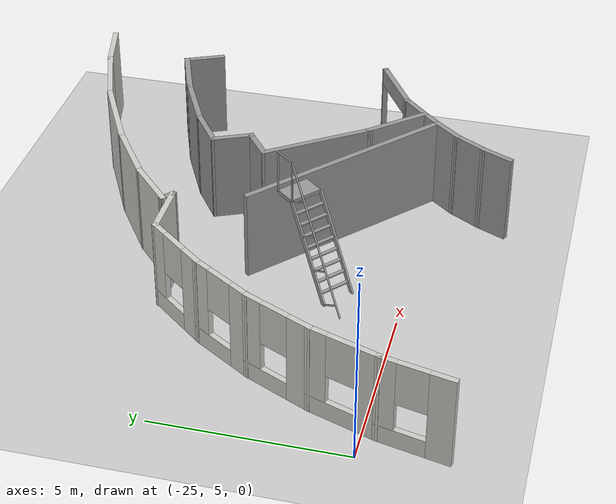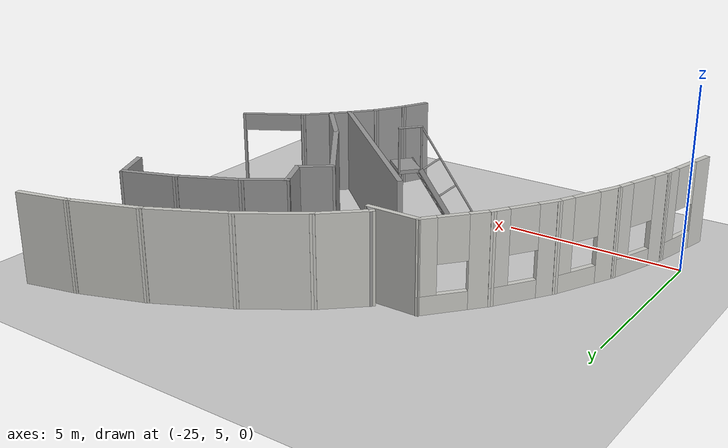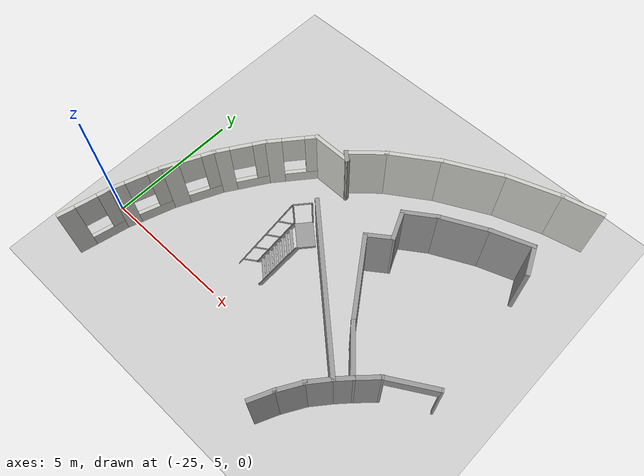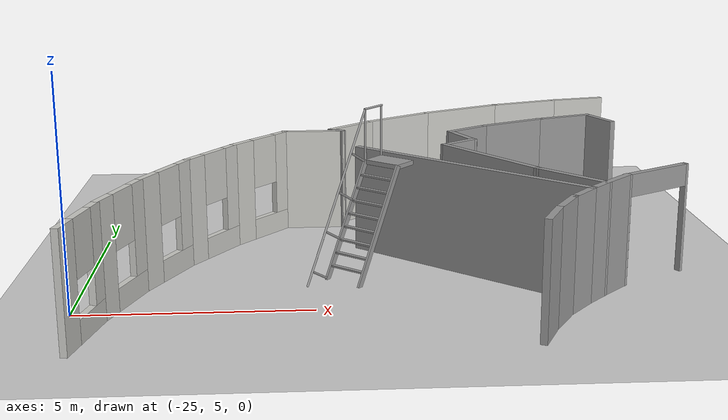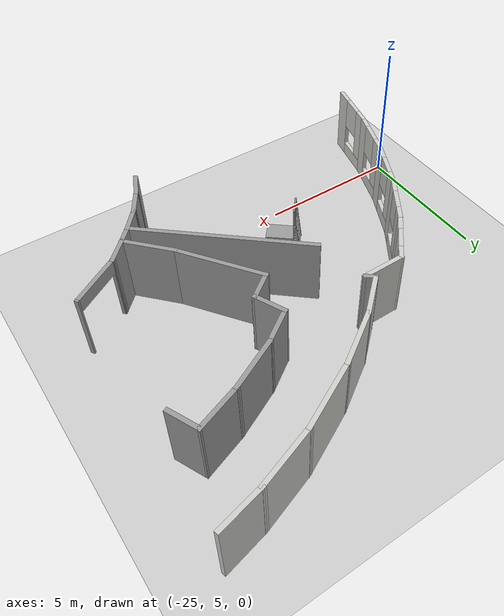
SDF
<sdf version="1.7">
 <world name="default">
  <model name="ground_plane">
   <static>1</static>
   <link name="link">
    <collision name="collision">
     <geometry><plane><normal>0 0 1</normal><size>100 100</size></plane></geometry>
     <surface>
      <contact><collide_bitmask>65535</collide_bitmask></contact>
      <friction><ode><mu>100</mu><mu2>50</mu2></ode></friction>
     </surface>
    </collision>
    <visual name="visual">
     <cast_shadows>0</cast_shadows>
     <geometry><plane><normal>0 0 1</normal><size>100 100</size></plane></geometry>
     <material>
      <script><uri>file://media/materials/scripts/gazebo.material</uri><name>Gazebo/Grey</name></script>
     </material>
    </visual>
   </link>
  </model>
  <model name="model">
   <pose>-4.1341 -0.05921 0 0 -0 0</pose>
   <link name="Wall_101">
    <collision name="Wall_101_Collision">
     <geometry><box><size>0.462824 0.15 2.5</size></box></geometry>
     <pose>0 0 1.25 0 -0 0</pose>
    </collision>
    <visual name="Wall_101_Visual">
     <pose>0 0 1.25 0 -0 0</pose>
     <geometry><box><size>0.462824 0.15 2.5</size></box></geometry>
     <material>
      <script><uri>file://media/materials/scripts/gazebo.material</uri><name>Gazebo/Grey</name></script>
      <ambient>1 1 1 1</ambient>
     </material>
     <meta><layer>0</layer></meta>
    </visual>
    <pose>-15.2732 11.179 0 0 -0 2.42042</pose>
   </link>
   <link name="Wall_102">
    <collision name="Wall_102_Collision">
     <geometry><box><size>1.56641 0.15 2.5</size></box></geometry>
     <pose>0 0 1.25 0 -0 0</pose>
    </collision>
    <visual name="Wall_102_Visual">
     <pose>0 0 1.25 0 -0 0</pose>
     <geometry><box><size>1.56641 0.15 2.5</size></box></geometry>
     <material>
      <script><uri>file://media/materials/scripts/gazebo.material</uri><name>Gazebo/CeilingTiled</name></script>
      <ambient>0.964706 1 0.972549 1</ambient>
     </material>
     <meta><layer>0</layer></meta>
    </visual>
    <pose>-14.8674 11.7595 0 0 -0 0.739454</pose>
   </link>
   <link name="Wall_103">
    <collision name="Wall_103_Collision">
     <geometry><box><size>2.03182 0.15 2.5</size></box></geometry>
     <pose>0 0 1.25 0 -0 0</pose>
    </collision>
    <visual name="Wall_103_Visual">
     <pose>0 0 1.25 0 -0 0</pose>
     <geometry><box><size>2.03182 0.15 2.5</size></box></geometry>
     <material>
      <script><uri>file://media/materials/scripts/gazebo.material</uri><name>Gazebo/CeilingTiled</name></script>
      <ambient>0.964706 1 0.972549 1</ambient>
     </material>
     <meta><layer>0</layer></meta>
    </visual>
    <pose>-13.5621 12.76 0 0 -0 0.589698</pose>
   </link>
   <link name="Wall_104">
    <collision name="Wall_104_Collision">
     <geometry><box><size>2.39757 0.15 2.5</size></box></geometry>
     <pose>0 0 1.25 0 -0 0</pose>
    </collision>
    <visual name="Wall_104_Visual">
     <pose>0 0 1.25 0 -0 0</pose>
     <geometry><box><size>2.39757 0.15 2.5</size></box></geometry>
     <material>
      <script><uri>file://media/materials/scripts/gazebo.material</uri><name>Gazebo/CeilingTiled</name></script>
      <ambient>0.964706 1 0.972549 1</ambient>
     </material>
     <meta><layer>0</layer></meta>
    </visual>
    <pose>-11.7796 13.795 0 0 -0 0.472801</pose>
   </link>
   <link name="Wall_106">
    <collision name="Wall_106_Collision">
     <geometry><box><size>2.09081 0.15 2.5</size></box></geometry>
     <pose>0 0 1.25 0 -0 0</pose>
    </collision>
    <visual name="Wall_106_Visual">
     <pose>0 0 1.25 0 -0 0</pose>
     <geometry><box><size>2.09081 0.15 2.5</size></box></geometry>
     <material>
      <script><uri>file://media/materials/scripts/gazebo.material</uri><name>Gazebo/CeilingTiled</name></script>
      <ambient>0.964706 1 0.972549 1</ambient>
     </material>
     <meta><layer>0</layer></meta>
    </visual>
    <pose>-9.86354 14.6283 0 0 -0 0.337731</pose>
   </link>
   <link name="Wall_107">
    <collision name="Wall_107_Collision">
     <geometry><box><size>1.57879 0.15 2.5</size></box></geometry>
     <pose>0 0 1.25 0 -0 0</pose>
    </collision>
    <visual name="Wall_107_Visual">
     <pose>0 0 1.25 0 -0 0</pose>
     <geometry><box><size>1.57879 0.15 2.5</size></box></geometry>
     <material>
      <script><uri>file://media/materials/scripts/gazebo.material</uri><name>Gazebo/CeilingTiled</name></script>
      <ambient>0.964706 1 0.972549 1</ambient>
     </material>
     <meta><layer>0</layer></meta>
    </visual>
    <pose>-8.2523 15.1124 0 0 -0 0.229576</pose>
   </link>
   <link name="Wall_135">
    <collision name="Wall_135_Collision">
     <geometry><box><size>6.29486 0.15 2.5</size></box></geometry>
     <pose>0 0 1.25 0 -0 0</pose>
    </collision>
    <visual name="Wall_135_Visual">
     <pose>0 0 1.25 0 -0 0</pose>
     <geometry><box><size>6.29486 0.15 2.5</size></box></geometry>
     <material>
      <script><uri>file://media/materials/scripts/gazebo.material</uri><name>Gazebo/Grey</name></script>
      <ambient>0.929412 0.960784 0.933333 1</ambient>
     </material>
     <meta><layer>0</layer></meta>
    </visual>
    <pose>-12.4823 7.17089 0 0 -0 -0.727536</pose>
   </link>
   <link name="Wall_136">
    <collision name="Wall_136_Collision">
     <geometry><box><size>0.730094 0.15 2.5</size></box></geometry>
     <pose>0 0 1.25 0 -0 0</pose>
    </collision>
    <visual name="Wall_136_Visual">
     <pose>0 0 1.25 0 -0 0</pose>
     <geometry><box><size>0.730094 0.15 2.5</size></box></geometry>
     <material>
      <script><uri>file://media/materials/scripts/gazebo.material</uri><name>Gazebo/Grey</name></script>
      <ambient>1 1 1 1</ambient>
     </material>
     <meta><layer>0</layer></meta>
    </visual>
    <pose>-9.98937 5.33923 0 0 -0 0.817645</pose>
   </link>
   <link name="Wall_139">
    <collision name="Wall_139_Collision">
     <geometry><box><size>0.967544 0.15 2.5</size></box></geometry>
     <pose>0 0 1.25 0 -0 0</pose>
    </collision>
    <visual name="Wall_139_Visual">
     <pose>0 0 1.25 0 -0 0</pose>
     <geometry><box><size>0.967544 0.15 2.5</size></box></geometry>
     <material>
      <script><uri>file://media/materials/scripts/gazebo.material</uri><name>Gazebo/Grey</name></script>
      <ambient>0.929412 0.960784 0.933333 1</ambient>
     </material>
     <meta><layer>0</layer></meta>
    </visual>
    <pose>-10.4508 4.81478 0 0 -0 -2.27001</pose>
   </link>
   <link name="Wall_140">
    <collision name="Wall_140_Collision">
     <geometry><box><size>1.07537 0.15 2.5</size></box></geometry>
     <pose>0 0 1.25 0 -0 0</pose>
    </collision>
    <visual name="Wall_140_Visual">
     <pose>0 0 1.25 0 -0 0</pose>
     <geometry><box><size>1.07537 0.15 2.5</size></box></geometry>
     <material>
      <script><uri>file://media/materials/scripts/gazebo.material</uri><name>Gazebo/Grey</name></script>
      <ambient>0.929412 0.960784 0.933333 1</ambient>
     </material>
     <meta><layer>0</layer></meta>
    </visual>
    <pose>-10.952 4.10518 0 0 -0 -2.11122</pose>
   </link>
   <link name="Wall_141">
    <collision name="Wall_141_Collision">
     <geometry><box><size>0.954554 0.15 2.5</size></box></geometry>
     <pose>0 0 1.25 0 -0 0</pose>
    </collision>
    <visual name="Wall_141_Visual">
     <pose>0 0 1.25 0 -0 0</pose>
     <geometry><box><size>0.954554 0.15 2.5</size></box></geometry>
     <material>
      <script><uri>file://media/materials/scripts/gazebo.material</uri><name>Gazebo/Grey</name></script>
      <ambient>0.929412 0.960784 0.933333 1</ambient>
     </material>
     <meta><layer>0</layer></meta>
    </visual>
    <pose>-11.362 3.34474 0 0 -0 -2.01239</pose>
   </link>
   <link name="Wall_260">
    <collision name="Wall_260_Collision">
     <geometry><box><size>1.91837 0.15 2.5</size></box></geometry>
     <pose>0 0 1.25 0 -0 0</pose>
    </collision>
    <visual name="Wall_260_Visual">
     <pose>0 0 1.25 0 -0 0</pose>
     <geometry><box><size>1.91837 0.15 2.5</size></box></geometry>
     <material>
      <script><uri>file://media/materials/scripts/gazebo.material</uri><name>Gazebo/Grey</name></script>
      <ambient>1 1 1 1</ambient>
     </material>
     <meta><layer>0</layer></meta>
    </visual>
    <pose>-10.3841 6.20662 0 0 -0 2.30601</pose>
   </link>
   <link name="Wall_261">
    <collision name="Wall_261_Collision">
     <geometry><box><size>3.18479 0.15 2.5</size></box></geometry>
     <pose>0 0 1.25 0 -0 0</pose>
    </collision>
    <visual name="Wall_261_Visual">
     <pose>0 0 1.25 0 -0 0</pose>
     <geometry><box><size>3.18479 0.15 2.5</size></box></geometry>
     <material>
      <script><uri>file://media/materials/scripts/gazebo.material</uri><name>Gazebo/Grey</name></script>
      <ambient>1 1 1 1</ambient>
     </material>
     <meta><layer>0</layer></meta>
    </visual>
    <pose>-11.8566 8.09894 0 0 -0 2.18902</pose>
   </link>
   <link name="Wall_262">
    <collision name="Wall_262_Collision">
     <geometry><box><size>1.06788 0.15 2.5</size></box></geometry>
     <pose>0 0 1.25 0 -0 0</pose>
    </collision>
    <visual name="Wall_262_Visual">
     <pose>0 0 1.25 0 -0 0</pose>
     <geometry><box><size>1.06788 0.15 2.5</size></box></geometry>
     <material>
      <script><uri>file://media/materials/scripts/gazebo.material</uri><name>Gazebo/Grey</name></script>
      <ambient>1 1 1 1</ambient>
     </material>
     <meta><layer>0</layer></meta>
    </visual>
    <pose>-12.3657 9.60659 0 0 -0 0.631974</pose>
   </link>
   <link name="Wall_264">
    <collision name="Wall_264_Collision">
     <geometry><box><size>1.17754 0.15 2.5</size></box></geometry>
     <pose>0 0 1.25 0 -0 0</pose>
    </collision>
    <visual name="Wall_264_Visual">
     <pose>0 0 1.25 0 -0 0</pose>
     <geometry><box><size>1.17754 0.15 2.5</size></box></geometry>
     <material>
      <script><uri>file://media/materials/scripts/gazebo.material</uri><name>Gazebo/Grey</name></script>
      <ambient>1 1 1 1</ambient>
     </material>
     <meta><layer>0</layer></meta>
    </visual>
    <pose>-12.207 10.3459 0 0 -0 1.99515</pose>
   </link>
   <link name="Wall_265">
    <collision name="Wall_265_Collision">
     <geometry><box><size>1.31922 0.15 2.5</size></box></geometry>
     <pose>0 0 1.25 0 -0 0</pose>
    </collision>
    <visual name="Wall_265_Visual">
     <pose>0 0 1.25 0 -0 0</pose>
     <geometry><box><size>1.31922 0.15 2.5</size></box></geometry>
     <material>
      <script><uri>file://media/materials/scripts/gazebo.material</uri><name>Gazebo/Grey</name></script>
      <ambient>1 1 1 1</ambient>
     </material>
     <meta><layer>0</layer></meta>
    </visual>
    <pose>-11.9375 11.1464 0 0 -0 0.604599</pose>
   </link>
   <link name="Wall_266">
    <collision name="Wall_266_Collision">
     <geometry><box><size>1.88646 0.15 2.5</size></box></geometry>
     <pose>0 0 1.25 0 -0 0</pose>
    </collision>
    <visual name="Wall_266_Visual">
     <pose>0 0 1.25 0 -0 0</pose>
     <geometry><box><size>1.88646 0.15 2.5</size></box></geometry>
     <material>
      <script><uri>file://media/materials/scripts/gazebo.material</uri><name>Gazebo/Grey</name></script>
      <ambient>1 1 1 1</ambient>
     </material>
     <meta><layer>0</layer></meta>
    </visual>
    <pose>-10.6783 11.8635 0 0 -0 0.459143</pose>
   </link>
   <link name="Wall_267">
    <collision name="Wall_267_Collision">
     <geometry><box><size>1.6383 0.15 2.5</size></box></geometry>
     <pose>0 0 1.25 0 -0 0</pose>
    </collision>
    <visual name="Wall_267_Visual">
     <pose>0 0 1.25 0 -0 0</pose>
     <geometry><box><size>1.6383 0.15 2.5</size></box></geometry>
     <material>
      <script><uri>file://media/materials/scripts/gazebo.material</uri><name>Gazebo/Grey</name></script>
      <ambient>1 1 1 1</ambient>
     </material>
     <meta><layer>0</layer></meta>
    </visual>
    <pose>-9.20034 12.5019 0 0 -0 0.347767</pose>
   </link>
   <link name="Wall_268">
    <collision name="Wall_268_Collision">
     <geometry><box><size>1.16759 0.15 2.5</size></box></geometry>
     <pose>0 0 1.25 0 -0 0</pose>
    </collision>
    <visual name="Wall_268_Visual">
     <pose>0 0 1.25 0 -0 0</pose>
     <geometry><box><size>1.16759 0.15 2.5</size></box></geometry>
     <material>
      <script><uri>file://media/materials/scripts/gazebo.material</uri><name>Gazebo/Grey</name></script>
      <ambient>1 1 1 1</ambient>
     </material>
     <meta><layer>0</layer></meta>
    </visual>
    <pose>-8.29086 12.292 0 0 -0 -1.14559</pose>
   </link>
   <link name="Wall_335">
    <collision name="Wall_335_Collision">
     <geometry><box><size>1 0.15 2.5</size></box></geometry>
     <pose>0 0 1.25 0 -0 0</pose>
    </collision>
    <visual name="Wall_335_Visual">
     <pose>0 0 1.25 0 -0 0</pose>
     <geometry><box><size>1 0.15 2.5</size></box></geometry>
     <material>
      <script><uri>file://media/materials/scripts/gazebo.material</uri><name>Gazebo/Grey</name></script>
      <ambient>1 1 1 1</ambient>
     </material>
     <meta><layer>0</layer></meta>
    </visual>
    <pose>-9.49047 5.85135 0 0 -0 0.785398</pose>
   </link>
   <link name="Wall_336">
    <pose>-8.43433 6.60281 0 0 -0 0.538045</pose>
    <visual name="Wall_336_Visual_0">
     <pose>-0.883843 0 1.25 0 -0 0</pose>
     <geometry><box><size>0.142213 0.15 2.5</size></box></geometry>
     <material>
      <script><uri>file://media/materials/scripts/gazebo.material</uri><name>Gazebo/Grey</name></script>
      <ambient>1 1 1 1</ambient>
     </material>
     <meta><layer>0</layer></meta>
    </visual>
    <collision name="Wall_336_Collision_0">
     <geometry><box><size>0.142213 0.15 2.5</size></box></geometry>
     <pose>-0.883843 0 1.25 0 -0 0</pose>
    </collision>
    <visual name="Wall_336_Visual_1">
     <pose>0.917568 0 1.25 0 -0 0</pose>
     <geometry><box><size>0.074763 0.15 2.5</size></box></geometry>
     <material>
      <script><uri>file://media/materials/scripts/gazebo.material</uri><name>Gazebo/Grey</name></script>
      <ambient>1 1 1 1</ambient>
     </material>
     <meta><layer>0</layer></meta>
    </visual>
    <collision name="Wall_336_Collision_1">
     <geometry><box><size>0.074763 0.15 2.5</size></box></geometry>
     <pose>0.917568 0 1.25 0 -0 0</pose>
    </collision>
    <visual name="Wall_336_Visual_2">
     <pose>0.033725 0 2.25 0 -0 0</pose>
     <geometry><box><size>1.69292 0.15 0.5</size></box></geometry>
     <material>
      <script><uri>file://media/materials/scripts/gazebo.material</uri><name>Gazebo/Grey</name></script>
      <ambient>1 1 1 1</ambient>
     </material>
     <meta><layer>0</layer></meta>
    </visual>
    <collision name="Wall_336_Collision_2">
     <geometry><box><size>1.69292 0.15 0.5</size></box></geometry>
     <pose>0.033725 0 2.25 0 -0 0</pose>
    </collision>
   </link>
   <link name="Wall_92">
    <pose>-20.3308 3.83668 0 0 -0 1.34732</pose>
    <visual name="Wall_92_Visual_0">
     <pose>-0.661053 0 1.25 0 -0 0</pose>
     <geometry><box><size>0.644056 0.15 2.5</size></box></geometry>
     <material>
      <script><uri>file://media/materials/scripts/gazebo.material</uri><name>Gazebo/CeilingTiled</name></script>
      <ambient>0 0.423529 0.960784 1</ambient>
     </material>
     <meta><layer>0</layer></meta>
    </visual>
    <collision name="Wall_92_Collision_0">
     <geometry><box><size>0.644056 0.15 2.5</size></box></geometry>
     <pose>-0.661053 0 1.25 0 -0 0</pose>
    </collision>
    <visual name="Wall_92_Visual_1">
     <pose>0.322028 0 0.25 0 -0 0</pose>
     <geometry><box><size>1.32211 0.15 0.5</size></box></geometry>
     <material>
      <script><uri>file://media/materials/scripts/gazebo.material</uri><name>Gazebo/CeilingTiled</name></script>
      <ambient>0 0.423529 0.960784 1</ambient>
     </material>
     <meta><layer>0</layer></meta>
    </visual>
    <collision name="Wall_92_Collision_1">
     <geometry><box><size>1.32211 0.15 0.5</size></box></geometry>
     <pose>0.322028 0 0.25 0 -0 0</pose>
    </collision>
    <visual name="Wall_92_Visual_2">
     <pose>0.722028 0 1.5 0 -0 0</pose>
     <geometry><box><size>0.522107 0.15 2</size></box></geometry>
     <material>
      <script><uri>file://media/materials/scripts/gazebo.material</uri><name>Gazebo/CeilingTiled</name></script>
      <ambient>0 0.423529 0.960784 1</ambient>
     </material>
     <meta><layer>0</layer></meta>
    </visual>
    <collision name="Wall_92_Collision_2">
     <geometry><box><size>0.522107 0.15 2</size></box></geometry>
     <pose>0.722028 0 1.5 0 -0 0</pose>
    </collision>
    <visual name="Wall_92_Visual_3">
     <pose>0.060975 0 1.9 0 -0 0</pose>
     <geometry><box><size>0.8 0.15 1.2</size></box></geometry>
     <material>
      <script><uri>file://media/materials/scripts/gazebo.material</uri><name>Gazebo/CeilingTiled</name></script>
      <ambient>0 0.423529 0.960784 1</ambient>
     </material>
     <meta><layer>0</layer></meta>
    </visual>
    <collision name="Wall_92_Collision_3">
     <geometry><box><size>0.8 0.15 1.2</size></box></geometry>
     <pose>0.060975 0 1.9 0 -0 0</pose>
    </collision>
   </link>
   <link name="Wall_94">
    <pose>-19.827 5.59158 0 0 -0 1.23582</pose>
    <visual name="Wall_94_Visual_0">
     <pose>-0.685507 0 1.25 0 -0 0</pose>
     <geometry><box><size>0.620114 0.15 2.5</size></box></geometry>
     <material>
      <script><uri>file://media/materials/scripts/gazebo.material</uri><name>Gazebo/CeilingTiled</name></script>
      <ambient>0 0.423529 0.960784 1</ambient>
     </material>
     <meta><layer>0</layer></meta>
    </visual>
    <collision name="Wall_94_Collision_0">
     <geometry><box><size>0.620114 0.15 2.5</size></box></geometry>
     <pose>-0.685507 0 1.25 0 -0 0</pose>
    </collision>
    <visual name="Wall_94_Visual_1">
     <pose>0.310057 0 0.25 0 -0 0</pose>
     <geometry><box><size>1.37101 0.15 0.5</size></box></geometry>
     <material>
      <script><uri>file://media/materials/scripts/gazebo.material</uri><name>Gazebo/CeilingTiled</name></script>
      <ambient>0 0.423529 0.960784 1</ambient>
     </material>
     <meta><layer>0</layer></meta>
    </visual>
    <collision name="Wall_94_Collision_1">
     <geometry><box><size>1.37101 0.15 0.5</size></box></geometry>
     <pose>0.310057 0 0.25 0 -0 0</pose>
    </collision>
    <visual name="Wall_94_Visual_2">
     <pose>0.710057 0 1.5 0 -0 0</pose>
     <geometry><box><size>0.571013 0.15 2</size></box></geometry>
     <material>
      <script><uri>file://media/materials/scripts/gazebo.material</uri><name>Gazebo/CeilingTiled</name></script>
      <ambient>0 0.423529 0.960784 1</ambient>
     </material>
     <meta><layer>0</layer></meta>
    </visual>
    <collision name="Wall_94_Collision_2">
     <geometry><box><size>0.571013 0.15 2</size></box></geometry>
     <pose>0.710057 0 1.5 0 -0 0</pose>
    </collision>
    <visual name="Wall_94_Visual_3">
     <pose>0.02455 0 1.9 0 -0 0</pose>
     <geometry><box><size>0.8 0.15 1.2</size></box></geometry>
     <material>
      <script><uri>file://media/materials/scripts/gazebo.material</uri><name>Gazebo/CeilingTiled</name></script>
      <ambient>0 0.423529 0.960784 1</ambient>
     </material>
     <meta><layer>0</layer></meta>
    </visual>
    <collision name="Wall_94_Collision_3">
     <geometry><box><size>0.8 0.15 1.2</size></box></geometry>
     <pose>0.02455 0 1.9 0 -0 0</pose>
    </collision>
   </link>
   <link name="Wall_96">
    <pose>-19.1194 7.3083 0 0 -0 1.12503</pose>
    <visual name="Wall_96_Visual_0">
     <pose>-0.66864 0 1.25 0 -0 0</pose>
     <geometry><box><size>0.690914 0.15 2.5</size></box></geometry>
     <material>
      <script><uri>file://media/materials/scripts/gazebo.material</uri><name>Gazebo/CeilingTiled</name></script>
      <ambient>0 0.423529 0.960784 1</ambient>
     </material>
     <meta><layer>0</layer></meta>
    </visual>
    <collision name="Wall_96_Collision_0">
     <geometry><box><size>0.690914 0.15 2.5</size></box></geometry>
     <pose>-0.66864 0 1.25 0 -0 0</pose>
    </collision>
    <visual name="Wall_96_Visual_1">
     <pose>0.345457 0 0.25 0 -0 0</pose>
     <geometry><box><size>1.33728 0.15 0.5</size></box></geometry>
     <material>
      <script><uri>file://media/materials/scripts/gazebo.material</uri><name>Gazebo/CeilingTiled</name></script>
      <ambient>0 0.423529 0.960784 1</ambient>
     </material>
     <meta><layer>0</layer></meta>
    </visual>
    <collision name="Wall_96_Collision_1">
     <geometry><box><size>1.33728 0.15 0.5</size></box></geometry>
     <pose>0.345457 0 0.25 0 -0 0</pose>
    </collision>
    <visual name="Wall_96_Visual_2">
     <pose>0.745457 0 1.5 0 -0 0</pose>
     <geometry><box><size>0.53728 0.15 2</size></box></geometry>
     <material>
      <script><uri>file://media/materials/scripts/gazebo.material</uri><name>Gazebo/CeilingTiled</name></script>
      <ambient>0 0.423529 0.960784 1</ambient>
     </material>
     <meta><layer>0</layer></meta>
    </visual>
    <collision name="Wall_96_Collision_2">
     <geometry><box><size>0.53728 0.15 2</size></box></geometry>
     <pose>0.745457 0 1.5 0 -0 0</pose>
    </collision>
    <visual name="Wall_96_Visual_3">
     <pose>0.076817 0 1.9 0 -0 0</pose>
     <geometry><box><size>0.8 0.15 1.2</size></box></geometry>
     <material>
      <script><uri>file://media/materials/scripts/gazebo.material</uri><name>Gazebo/CeilingTiled</name></script>
      <ambient>0 0.423529 0.960784 1</ambient>
     </material>
     <meta><layer>0</layer></meta>
    </visual>
    <collision name="Wall_96_Collision_3">
     <geometry><box><size>0.8 0.15 1.2</size></box></geometry>
     <pose>0.076817 0 1.9 0 -0 0</pose>
    </collision>
   </link>
   <link name="Wall_97">
    <pose>-18.2278 8.90846 0 0 -0 0.99691</pose>
    <visual name="Wall_97_Visual_0">
     <pose>-0.661481 0 1.25 0 -0 0</pose>
     <geometry><box><size>0.619931 0.15 2.5</size></box></geometry>
     <material>
      <script><uri>file://media/materials/scripts/gazebo.material</uri><name>Gazebo/CeilingTiled</name></script>
      <ambient>0 0.423529 0.960784 1</ambient>
     </material>
     <meta><layer>0</layer></meta>
    </visual>
    <collision name="Wall_97_Collision_0">
     <geometry><box><size>0.619931 0.15 2.5</size></box></geometry>
     <pose>-0.661481 0 1.25 0 -0 0</pose>
    </collision>
    <visual name="Wall_97_Visual_1">
     <pose>0.309965 0 0.25 0 -0 0</pose>
     <geometry><box><size>1.32296 0.15 0.5</size></box></geometry>
     <material>
      <script><uri>file://media/materials/scripts/gazebo.material</uri><name>Gazebo/CeilingTiled</name></script>
      <ambient>0 0.423529 0.960784 1</ambient>
     </material>
     <meta><layer>0</layer></meta>
    </visual>
    <collision name="Wall_97_Collision_1">
     <geometry><box><size>1.32296 0.15 0.5</size></box></geometry>
     <pose>0.309965 0 0.25 0 -0 0</pose>
    </collision>
    <visual name="Wall_97_Visual_2">
     <pose>0.709965 0 1.5 0 -0 0</pose>
     <geometry><box><size>0.522961 0.15 2</size></box></geometry>
     <material>
      <script><uri>file://media/materials/scripts/gazebo.material</uri><name>Gazebo/CeilingTiled</name></script>
      <ambient>0 0.423529 0.960784 1</ambient>
     </material>
     <meta><layer>0</layer></meta>
    </visual>
    <collision name="Wall_97_Collision_2">
     <geometry><box><size>0.522961 0.15 2</size></box></geometry>
     <pose>0.709965 0 1.5 0 -0 0</pose>
    </collision>
    <visual name="Wall_97_Visual_3">
     <pose>0.048485 0 1.9 0 -0 0</pose>
     <geometry><box><size>0.8 0.15 1.2</size></box></geometry>
     <material>
      <script><uri>file://media/materials/scripts/gazebo.material</uri><name>Gazebo/CeilingTiled</name></script>
      <ambient>0 0.423529 0.960784 1</ambient>
     </material>
     <meta><layer>0</layer></meta>
    </visual>
    <collision name="Wall_97_Collision_3">
     <geometry><box><size>0.8 0.15 1.2</size></box></geometry>
     <pose>0.048485 0 1.9 0 -0 0</pose>
    </collision>
   </link>
   <link name="Wall_98">
    <pose>-17.1556 10.3685 0 0 -0 0.879239</pose>
    <visual name="Wall_98_Visual_0">
     <pose>-0.661468 0 1.25 0 -0 0</pose>
     <geometry><box><size>0.66336 0.15 2.5</size></box></geometry>
     <material>
      <script><uri>file://media/materials/scripts/gazebo.material</uri><name>Gazebo/CeilingTiled</name></script>
      <ambient>0 0.423529 0.960784 1</ambient>
     </material>
     <meta><layer>0</layer></meta>
    </visual>
    <collision name="Wall_98_Collision_0">
     <geometry><box><size>0.66336 0.15 2.5</size></box></geometry>
     <pose>-0.661468 0 1.25 0 -0 0</pose>
    </collision>
    <visual name="Wall_98_Visual_1">
     <pose>0.33168 0 0.25 0 -0 0</pose>
     <geometry><box><size>1.32294 0.15 0.5</size></box></geometry>
     <material>
      <script><uri>file://media/materials/scripts/gazebo.material</uri><name>Gazebo/CeilingTiled</name></script>
      <ambient>0 0.423529 0.960784 1</ambient>
     </material>
     <meta><layer>0</layer></meta>
    </visual>
    <collision name="Wall_98_Collision_1">
     <geometry><box><size>1.32294 0.15 0.5</size></box></geometry>
     <pose>0.33168 0 0.25 0 -0 0</pose>
    </collision>
    <visual name="Wall_98_Visual_2">
     <pose>0.73168 0 1.5 0 -0 0</pose>
     <geometry><box><size>0.522936 0.15 2</size></box></geometry>
     <material>
      <script><uri>file://media/materials/scripts/gazebo.material</uri><name>Gazebo/CeilingTiled</name></script>
      <ambient>0 0.423529 0.960784 1</ambient>
     </material>
     <meta><layer>0</layer></meta>
    </visual>
    <collision name="Wall_98_Collision_2">
     <geometry><box><size>0.522936 0.15 2</size></box></geometry>
     <pose>0.73168 0 1.5 0 -0 0</pose>
    </collision>
    <visual name="Wall_98_Visual_3">
     <pose>0.070212 0 1.9 0 -0 0</pose>
     <geometry><box><size>0.8 0.15 1.2</size></box></geometry>
     <material>
      <script><uri>file://media/materials/scripts/gazebo.material</uri><name>Gazebo/CeilingTiled</name></script>
      <ambient>0 0.423529 0.960784 1</ambient>
     </material>
     <meta><layer>0</layer></meta>
    </visual>
    <collision name="Wall_98_Collision_3">
     <geometry><box><size>0.8 0.15 1.2</size></box></geometry>
     <pose>0.070212 0 1.9 0 -0 0</pose>
    </collision>
   </link>
   <link name="Wall_99">
    <collision name="Wall_99_Collision">
     <geometry><box><size>1.56441 0.15 2.5</size></box></geometry>
     <pose>0 0 1.25 0 -0 0</pose>
    </collision>
    <visual name="Wall_99_Visual">
     <pose>0 0 1.25 0 -0 0</pose>
     <geometry><box><size>1.56441 0.15 2.5</size></box></geometry>
     <material>
      <script><uri>file://media/materials/scripts/gazebo.material</uri><name>Gazebo/CeilingTiled</name></script>
      <ambient>0.964706 1 0.972549 1</ambient>
     </material>
     <meta><layer>0</layer></meta>
    </visual>
    <pose>-15.8629 11.0757 0 0 -0 0</pose>
   </link>
   <static>1</static>
  </model>
  <model name="ladder_60deg_1rails">
   <static>1</static>
   <link name="step0">
    <pose>0 0.15396 0.266667 0 -0 0</pose>
    <inertial>
     <mass>9.75482</mass>
     <inertia>
      <ixx>0.00957124</ixx>
      <iyy>0.65963</iyy>
      <izz>0.666842</izz>
      <ixy>0</ixy>
      <ixz>0</ixz>
      <iyz>0</iyz>
     </inertia>
    </inertial>
    <collision name="collision"><geometry><box><size>0.9 0.1016 0.0381</size></box></geometry></collision>
    <visual name="visual">
     <geometry><box><size>0.9 0.1016 0.0381</size></box></geometry>
     <material>
      <script><uri>file://media/materials/scripts/gazebo.material</uri><name>Gazebo/Grey</name></script>
     </material>
    </visual>
   </link>
   <link name="step1">
    <pose>0 0.30792 0.533333 0 -0 0</pose>
    <inertial>
     <mass>9.75482</mass>
     <inertia>
      <ixx>0.00957124</ixx>
      <iyy>0.65963</iyy>
      <izz>0.666842</izz>
      <ixy>0</ixy>
      <ixz>0</ixz>
      <iyz>0</iyz>
     </inertia>
    </inertial>
    <collision name="collision"><geometry><box><size>0.9 0.1016 0.0381</size></box></geometry></collision>
    <visual name="visual">
     <geometry><box><size>0.9 0.1016 0.0381</size></box></geometry>
     <material>
      <script><uri>file://media/materials/scripts/gazebo.material</uri><name>Gazebo/Grey</name></script>
     </material>
    </visual>
   </link>
   <link name="step2">
    <pose>0 0.46188 0.8 0 -0 0</pose>
    <inertial>
     <mass>9.75482</mass>
     <inertia>
      <ixx>0.00957124</ixx>
      <iyy>0.65963</iyy>
      <izz>0.666842</izz>
      <ixy>0</ixy>
      <ixz>0</ixz>
      <iyz>0</iyz>
     </inertia>
    </inertial>
    <collision name="collision"><geometry><box><size>0.9 0.1016 0.0381</size></box></geometry></collision>
    <visual name="visual">
     <geometry><box><size>0.9 0.1016 0.0381</size></box></geometry>
     <material>
      <script><uri>file://media/materials/scripts/gazebo.material</uri><name>Gazebo/Grey</name></script>
     </material>
    </visual>
   </link>
   <link name="step3">
    <pose>0 0.61584 1.06667 0 -0 0</pose>
    <inertial>
     <mass>9.75482</mass>
     <inertia>
      <ixx>0.00957124</ixx>
      <iyy>0.65963</iyy>
      <izz>0.666842</izz>
      <ixy>0</ixy>
      <ixz>0</ixz>
      <iyz>0</iyz>
     </inertia>
    </inertial>
    <collision name="collision"><geometry><box><size>0.9 0.1016 0.0381</size></box></geometry></collision>
    <visual name="visual">
     <geometry><box><size>0.9 0.1016 0.0381</size></box></geometry>
     <material>
      <script><uri>file://media/materials/scripts/gazebo.material</uri><name>Gazebo/Grey</name></script>
     </material>
    </visual>
   </link>
   <link name="step4">
    <pose>0 0.7698 1.33333 0 -0 0</pose>
    <inertial>
     <mass>9.75482</mass>
     <inertia>
      <ixx>0.00957124</ixx>
      <iyy>0.65963</iyy>
      <izz>0.666842</izz>
      <ixy>0</ixy>
      <ixz>0</ixz>
      <iyz>0</iyz>
     </inertia>
    </inertial>
    <collision name="collision"><geometry><box><size>0.9 0.1016 0.0381</size></box></geometry></collision>
    <visual name="visual">
     <geometry><box><size>0.9 0.1016 0.0381</size></box></geometry>
     <material>
      <script><uri>file://media/materials/scripts/gazebo.material</uri><name>Gazebo/Grey</name></script>
     </material>
    </visual>
   </link>
   <link name="step5">
    <pose>0 0.92376 1.6 0 -0 0</pose>
    <inertial>
     <mass>9.75482</mass>
     <inertia>
      <ixx>0.00957124</ixx>
      <iyy>0.65963</iyy>
      <izz>0.666842</izz>
      <ixy>0</ixy>
      <ixz>0</ixz>
      <iyz>0</iyz>
     </inertia>
    </inertial>
    <collision name="collision"><geometry><box><size>0.9 0.1016 0.0381</size></box></geometry></collision>
    <visual name="visual">
     <geometry><box><size>0.9 0.1016 0.0381</size></box></geometry>
     <material>
      <script><uri>file://media/materials/scripts/gazebo.material</uri><name>Gazebo/Grey</name></script>
     </material>
    </visual>
   </link>
   <link name="step6">
    <pose>0 1.07772 1.86667 0 -0 0</pose>
    <inertial>
     <mass>9.75482</mass>
     <inertia>
      <ixx>0.00957124</ixx>
      <iyy>0.65963</iyy>
      <izz>0.666842</izz>
      <ixy>0</ixy>
      <ixz>0</ixz>
      <iyz>0</iyz>
     </inertia>
    </inertial>
    <collision name="collision"><geometry><box><size>0.9 0.1016 0.0381</size></box></geometry></collision>
    <visual name="visual">
     <geometry><box><size>0.9 0.1016 0.0381</size></box></geometry>
     <material>
      <script><uri>file://media/materials/scripts/gazebo.material</uri><name>Gazebo/Grey</name></script>
     </material>
    </visual>
   </link>
   <link name="step7">
    <pose>0 1.23168 2.13333 0 -0 0</pose>
    <inertial>
     <mass>9.75482</mass>
     <inertia>
      <ixx>0.00957124</ixx>
      <iyy>0.65963</iyy>
      <izz>0.666842</izz>
      <ixy>0</ixy>
      <ixz>0</ixz>
      <iyz>0</iyz>
     </inertia>
    </inertial>
    <collision name="collision"><geometry><box><size>0.9 0.1016 0.0381</size></box></geometry></collision>
    <visual name="visual">
     <geometry><box><size>0.9 0.1016 0.0381</size></box></geometry>
     <material>
      <script><uri>file://media/materials/scripts/gazebo.material</uri><name>Gazebo/Grey</name></script>
     </material>
    </visual>
   </link>
   <link name="landing">
    <pose>0 1.68564 2.4 0 -0 0</pose>
    <inertial>
     <mass>57.6072</mass>
     <inertia><ixx>1.73518</ixx><iyy>3.89545</iyy><izz>5.6167</izz><ixy>0</ixy><ixz>0</ixz><iyz>0</iyz></inertia>
    </inertial>
    <collision name="collision"><geometry><box><size>0.9 0.6 0.1016</size></box></geometry></collision>
    <visual name="visual">
     <geometry><box><size>0.9 0.6 0.1016</size></box></geometry>
     <material>
      <script><uri>file://media/materials/scripts/gazebo.material</uri><name>Gazebo/Grey</name></script>
     </material>
    </visual>
   </link>
   <link name="left_side_wall">
    <pose>-0.45 0.69282 1.2 1.0472 -0 0</pose>
    <collision name="collision"><geometry><box><size>0.0508 2.85128 0.13</size></box></geometry></collision>
    <visual name="visual">
     <geometry><box><size>0.0508 2.85128 0.13</size></box></geometry>
     <material>
      <script><uri>file://media/materials/scripts/gazebo.material</uri><name>Gazebo/Grey</name></script>
     </material>
    </visual>
   </link>
   <link name="right_side_wall">
    <pose>0.45 0.69282 1.2 1.0472 -0 0</pose>
    <collision name="collision"><geometry><box><size>0.0508 2.85128 0.13</size></box></geometry></collision>
    <visual name="visual">
     <geometry><box><size>0.0508 2.85128 0.13</size></box></geometry>
     <material>
      <script><uri>file://media/materials/scripts/gazebo.material</uri><name>Gazebo/Grey</name></script>
     </material>
    </visual>
   </link>
   <link name="left_railing_long">
    <pose>-0.45 0.34282 1.80622 -0.523599 0 0</pose>
    <collision name="collision">
     <geometry><cylinder><radius>0.02413</radius><length>4.17128</length></cylinder></geometry>
    </collision>
    <visual name="visual">
     <geometry><cylinder><radius>0.02413</radius><length>4.17128</length></cylinder></geometry>
     <material>
      <script><uri>file://media/materials/scripts/gazebo.material</uri><name>Gazebo/Grey</name></script>
     </material>
    </visual>
   </link>
   <link name="left_railing_upright0">
    <pose>-0.45 -0.274963 0.15875 1.0472 -0 0</pose>
    <collision name="collision">
     <geometry><cylinder><radius>0.02413</radius><length>0.541218</length></cylinder></geometry>
    </collision>
    <visual name="visual">
     <geometry><cylinder><radius>0.02413</radius><length>0.541218</length></cylinder></geometry>
     <material>
      <script><uri>file://media/materials/scripts/gazebo.material</uri><name>Gazebo/Grey</name></script>
     </material>
    </visual>
   </link>
   <link name="left_railing_upright1">
    <pose>-0.45 0.186917 0.95875 1.0472 -0 0</pose>
    <collision name="collision">
     <geometry><cylinder><radius>0.02413</radius><length>0.541218</length></cylinder></geometry>
    </collision>
    <visual name="visual">
     <geometry><cylinder><radius>0.02413</radius><length>0.541218</length></cylinder></geometry>
     <material>
      <script><uri>file://media/materials/scripts/gazebo.material</uri><name>Gazebo/Grey</name></script>
     </material>
    </visual>
   </link>
   <link name="left_railing_upright2">
    <pose>-0.45 0.648797 1.75875 1.0472 -0 0</pose>
    <collision name="collision">
     <geometry><cylinder><radius>0.02413</radius><length>0.541218</length></cylinder></geometry>
    </collision>
    <visual name="visual">
     <geometry><cylinder><radius>0.02413</radius><length>0.541218</length></cylinder></geometry>
     <material>
      <script><uri>file://media/materials/scripts/gazebo.material</uri><name>Gazebo/Grey</name></script>
     </material>
    </visual>
   </link>
   <link name="left_railing_upright3">
    <pose>-0.45 1.11068 2.55875 1.0472 -0 0</pose>
    <collision name="collision">
     <geometry><cylinder><radius>0.02413</radius><length>0.541218</length></cylinder></geometry>
    </collision>
    <visual name="visual">
     <geometry><cylinder><radius>0.02413</radius><length>0.541218</length></cylinder></geometry>
     <material>
      <script><uri>file://media/materials/scripts/gazebo.material</uri><name>Gazebo/Grey</name></script>
     </material>
    </visual>
   </link>
   <link name="left_railing_landing_top">
    <pose>-0.45 1.68564 3.61244 1.5708 -0 0</pose>
    <collision name="collision">
     <geometry><cylinder><radius>0.02413</radius><length>0.64826</length></cylinder></geometry>
    </collision>
    <visual name="visual">
     <geometry><cylinder><radius>0.02413</radius><length>0.64826</length></cylinder></geometry>
     <material>
      <script><uri>file://media/materials/scripts/gazebo.material</uri><name>Gazebo/Grey</name></script>
     </material>
    </visual>
   </link>
   <link name="left_railing_landing_upright_0">
    <pose>-0.45 1.38564 3.00622 0 -0 0</pose>
    <collision name="collision">
     <geometry><cylinder><radius>0.02413</radius><length>1.21244</length></cylinder></geometry>
    </collision>
    <visual name="visual">
     <geometry><cylinder><radius>0.02413</radius><length>1.21244</length></cylinder></geometry>
     <material>
      <script><uri>file://media/materials/scripts/gazebo.material</uri><name>Gazebo/Grey</name></script>
     </material>
    </visual>
   </link>
   <link name="left_railing_landing_upright_1">
    <pose>-0.45 1.98564 3.00622 0 -0 0</pose>
    <collision name="collision">
     <geometry><cylinder><radius>0.02413</radius><length>1.21244</length></cylinder></geometry>
    </collision>
    <visual name="visual">
     <geometry><cylinder><radius>0.02413</radius><length>1.21244</length></cylinder></geometry>
     <material>
      <script><uri>file://media/materials/scripts/gazebo.material</uri><name>Gazebo/Grey</name></script>
     </material>
    </visual>
   </link>
   <pose>-19.3852 6.66624 0 0 0 -0.704476</pose>
  </model>
 </world>
</sdf>
